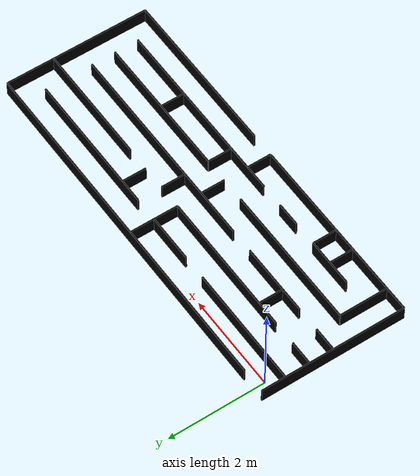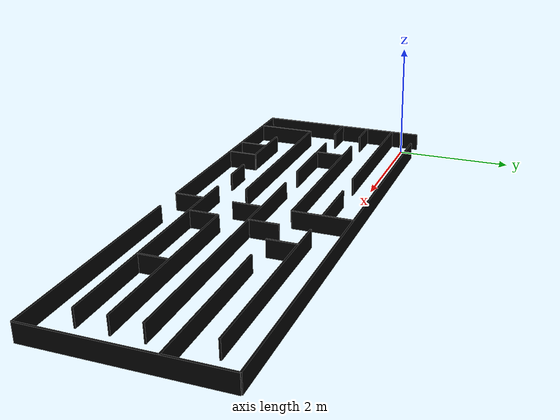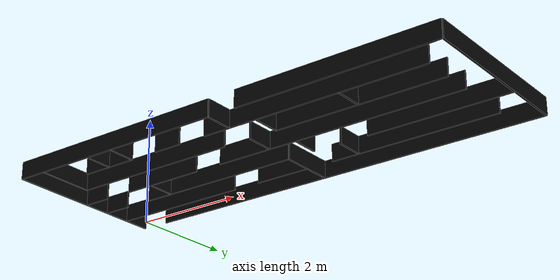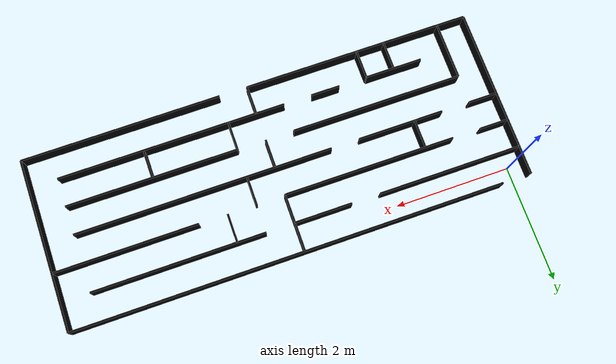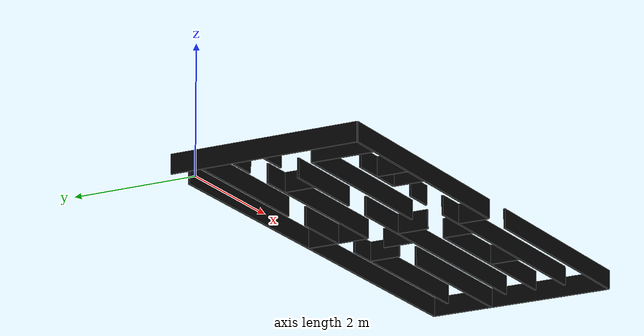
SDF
<?xml version="1.0"?>
<sdf version="1.9">
  <model name="school_maze" canonical_link="maze_link">
    <static>true</static>

    <link name="maze_link">

      <pose relative_to="__model__">
        3.75 -1.25 0.0 0.0 0.0 0.0
      </pose>

      <collision name="h_0_1_15_collision">
        <pose>0.250 1.500 0.150 0 0 0</pose>
        <geometry>
          <box>
            <size>7.500 0.030 0.300</size>
          </box>
        </geometry>
        <surface>
          <friction>
            <ode>
              <mu>0.8</mu>
              <mu2>0.8</mu2>
            </ode>
          </friction>
        </surface>
      </collision>

      <visual name="h_0_1_15_visual">
        <pose>0.250 1.500 0.150 0 0 0</pose>
        <geometry>
          <box>
            <size>7.500 0.030 0.300</size>
          </box>
        </geometry>
        <cast_shadows>true</cast_shadows>
        <material>
          <ambient>0.010 0.010 0.010 1.0</ambient>
          <diffuse>0.015 0.015 0.015 1.0</diffuse>
          <specular>0.080 0.080 0.080 1.0</specular>
        </material>
      </visual>
      <collision name="h_1_0_4_collision">
        <pose>-2.750 1.000 0.150 0 0 0</pose>
        <geometry>
          <box>
            <size>2.500 0.030 0.300</size>
          </box>
        </geometry>
        <surface>
          <friction>
            <ode>
              <mu>0.8</mu>
              <mu2>0.8</mu2>
            </ode>
          </friction>
        </surface>
      </collision>

      <visual name="h_1_0_4_visual">
        <pose>-2.750 1.000 0.150 0 0 0</pose>
        <geometry>
          <box>
            <size>2.500 0.030 0.300</size>
          </box>
        </geometry>
        <cast_shadows>true</cast_shadows>
        <material>
          <ambient>0.010 0.010 0.010 1.0</ambient>
          <diffuse>0.015 0.015 0.015 1.0</diffuse>
          <specular>0.080 0.080 0.080 1.0</specular>
        </material>
      </visual>
      <collision name="h_1_6_7_collision">
        <pose>-0.500 1.000 0.150 0 0 0</pose>
        <geometry>
          <box>
            <size>1.000 0.030 0.300</size>
          </box>
        </geometry>
        <surface>
          <friction>
            <ode>
              <mu>0.8</mu>
              <mu2>0.8</mu2>
            </ode>
          </friction>
        </surface>
      </collision>

      <visual name="h_1_6_7_visual">
        <pose>-0.500 1.000 0.150 0 0 0</pose>
        <geometry>
          <box>
            <size>1.000 0.030 0.300</size>
          </box>
        </geometry>
        <cast_shadows>true</cast_shadows>
        <material>
          <ambient>0.010 0.010 0.010 1.0</ambient>
          <diffuse>0.015 0.015 0.015 1.0</diffuse>
          <specular>0.080 0.080 0.080 1.0</specular>
        </material>
      </visual>
      <collision name="h_1_9_14_collision">
        <pose>2.000 1.000 0.150 0 0 0</pose>
        <geometry>
          <box>
            <size>3.000 0.030 0.300</size>
          </box>
        </geometry>
        <surface>
          <friction>
            <ode>
              <mu>0.8</mu>
              <mu2>0.8</mu2>
            </ode>
          </friction>
        </surface>
      </collision>

      <visual name="h_1_9_14_visual">
        <pose>2.000 1.000 0.150 0 0 0</pose>
        <geometry>
          <box>
            <size>3.000 0.030 0.300</size>
          </box>
        </geometry>
        <cast_shadows>true</cast_shadows>
        <material>
          <ambient>0.010 0.010 0.010 1.0</ambient>
          <diffuse>0.015 0.015 0.015 1.0</diffuse>
          <specular>0.080 0.080 0.080 1.0</specular>
        </material>
      </visual>
      <collision name="h_2_0_0_collision">
        <pose>-3.750 0.500 0.150 0 0 0</pose>
        <geometry>
          <box>
            <size>0.500 0.030 0.300</size>
          </box>
        </geometry>
        <surface>
          <friction>
            <ode>
              <mu>0.8</mu>
              <mu2>0.8</mu2>
            </ode>
          </friction>
        </surface>
      </collision>

      <visual name="h_2_0_0_visual">
        <pose>-3.750 0.500 0.150 0 0 0</pose>
        <geometry>
          <box>
            <size>0.500 0.030 0.300</size>
          </box>
        </geometry>
        <cast_shadows>true</cast_shadows>
        <material>
          <ambient>0.010 0.010 0.010 1.0</ambient>
          <diffuse>0.015 0.015 0.015 1.0</diffuse>
          <specular>0.080 0.080 0.080 1.0</specular>
        </material>
      </visual>
      <collision name="h_2_2_7_collision">
        <pose>-1.500 0.500 0.150 0 0 0</pose>
        <geometry>
          <box>
            <size>3.000 0.030 0.300</size>
          </box>
        </geometry>
        <surface>
          <friction>
            <ode>
              <mu>0.8</mu>
              <mu2>0.8</mu2>
            </ode>
          </friction>
        </surface>
      </collision>

      <visual name="h_2_2_7_visual">
        <pose>-1.500 0.500 0.150 0 0 0</pose>
        <geometry>
          <box>
            <size>3.000 0.030 0.300</size>
          </box>
        </geometry>
        <cast_shadows>true</cast_shadows>
        <material>
          <ambient>0.010 0.010 0.010 1.0</ambient>
          <diffuse>0.015 0.015 0.015 1.0</diffuse>
          <specular>0.080 0.080 0.080 1.0</specular>
        </material>
      </visual>
      <collision name="h_2_11_15_collision">
        <pose>2.750 0.500 0.150 0 0 0</pose>
        <geometry>
          <box>
            <size>2.500 0.030 0.300</size>
          </box>
        </geometry>
        <surface>
          <friction>
            <ode>
              <mu>0.8</mu>
              <mu2>0.8</mu2>
            </ode>
          </friction>
        </surface>
      </collision>

      <visual name="h_2_11_15_visual">
        <pose>2.750 0.500 0.150 0 0 0</pose>
        <geometry>
          <box>
            <size>2.500 0.030 0.300</size>
          </box>
        </geometry>
        <cast_shadows>true</cast_shadows>
        <material>
          <ambient>0.010 0.010 0.010 1.0</ambient>
          <diffuse>0.015 0.015 0.015 1.0</diffuse>
          <specular>0.080 0.080 0.080 1.0</specular>
        </material>
      </visual>
      <collision name="h_3_0_0_collision">
        <pose>-3.750 0.000 0.150 0 0 0</pose>
        <geometry>
          <box>
            <size>0.500 0.030 0.300</size>
          </box>
        </geometry>
        <surface>
          <friction>
            <ode>
              <mu>0.8</mu>
              <mu2>0.8</mu2>
            </ode>
          </friction>
        </surface>
      </collision>

      <visual name="h_3_0_0_visual">
        <pose>-3.750 0.000 0.150 0 0 0</pose>
        <geometry>
          <box>
            <size>0.500 0.030 0.300</size>
          </box>
        </geometry>
        <cast_shadows>true</cast_shadows>
        <material>
          <ambient>0.010 0.010 0.010 1.0</ambient>
          <diffuse>0.015 0.015 0.015 1.0</diffuse>
          <specular>0.080 0.080 0.080 1.0</specular>
        </material>
      </visual>
      <collision name="h_3_2_4_collision">
        <pose>-2.250 0.000 0.150 0 0 0</pose>
        <geometry>
          <box>
            <size>1.500 0.030 0.300</size>
          </box>
        </geometry>
        <surface>
          <friction>
            <ode>
              <mu>0.8</mu>
              <mu2>0.8</mu2>
            </ode>
          </friction>
        </surface>
      </collision>

      <visual name="h_3_2_4_visual">
        <pose>-2.250 0.000 0.150 0 0 0</pose>
        <geometry>
          <box>
            <size>1.500 0.030 0.300</size>
          </box>
        </geometry>
        <cast_shadows>true</cast_shadows>
        <material>
          <ambient>0.010 0.010 0.010 1.0</ambient>
          <diffuse>0.015 0.015 0.015 1.0</diffuse>
          <specular>0.080 0.080 0.080 1.0</specular>
        </material>
      </visual>
      <collision name="h_3_6_14_collision">
        <pose>1.250 0.000 0.150 0 0 0</pose>
        <geometry>
          <box>
            <size>4.500 0.030 0.300</size>
          </box>
        </geometry>
        <surface>
          <friction>
            <ode>
              <mu>0.8</mu>
              <mu2>0.8</mu2>
            </ode>
          </friction>
        </surface>
      </collision>

      <visual name="h_3_6_14_visual">
        <pose>1.250 0.000 0.150 0 0 0</pose>
        <geometry>
          <box>
            <size>4.500 0.030 0.300</size>
          </box>
        </geometry>
        <cast_shadows>true</cast_shadows>
        <material>
          <ambient>0.010 0.010 0.010 1.0</ambient>
          <diffuse>0.015 0.015 0.015 1.0</diffuse>
          <specular>0.080 0.080 0.080 1.0</specular>
        </material>
      </visual>
      <collision name="h_4_1_6_collision">
        <pose>-2.000 -0.500 0.150 0 0 0</pose>
        <geometry>
          <box>
            <size>3.000 0.030 0.300</size>
          </box>
        </geometry>
        <surface>
          <friction>
            <ode>
              <mu>0.8</mu>
              <mu2>0.8</mu2>
            </ode>
          </friction>
        </surface>
      </collision>

      <visual name="h_4_1_6_visual">
        <pose>-2.000 -0.500 0.150 0 0 0</pose>
        <geometry>
          <box>
            <size>3.000 0.030 0.300</size>
          </box>
        </geometry>
        <cast_shadows>true</cast_shadows>
        <material>
          <ambient>0.010 0.010 0.010 1.0</ambient>
          <diffuse>0.015 0.015 0.015 1.0</diffuse>
          <specular>0.080 0.080 0.080 1.0</specular>
        </material>
      </visual>
      <collision name="h_4_9_14_collision">
        <pose>2.000 -0.500 0.150 0 0 0</pose>
        <geometry>
          <box>
            <size>3.000 0.030 0.300</size>
          </box>
        </geometry>
        <surface>
          <friction>
            <ode>
              <mu>0.8</mu>
              <mu2>0.8</mu2>
            </ode>
          </friction>
        </surface>
      </collision>

      <visual name="h_4_9_14_visual">
        <pose>2.000 -0.500 0.150 0 0 0</pose>
        <geometry>
          <box>
            <size>3.000 0.030 0.300</size>
          </box>
        </geometry>
        <cast_shadows>true</cast_shadows>
        <material>
          <ambient>0.010 0.010 0.010 1.0</ambient>
          <diffuse>0.015 0.015 0.015 1.0</diffuse>
          <specular>0.080 0.080 0.080 1.0</specular>
        </material>
      </visual>
      <collision name="h_5_2_3_collision">
        <pose>-2.500 -1.000 0.150 0 0 0</pose>
        <geometry>
          <box>
            <size>1.000 0.030 0.300</size>
          </box>
        </geometry>
        <surface>
          <friction>
            <ode>
              <mu>0.8</mu>
              <mu2>0.8</mu2>
            </ode>
          </friction>
        </surface>
      </collision>

      <visual name="h_5_2_3_visual">
        <pose>-2.500 -1.000 0.150 0 0 0</pose>
        <geometry>
          <box>
            <size>1.000 0.030 0.300</size>
          </box>
        </geometry>
        <cast_shadows>true</cast_shadows>
        <material>
          <ambient>0.010 0.010 0.010 1.0</ambient>
          <diffuse>0.015 0.015 0.015 1.0</diffuse>
          <specular>0.080 0.080 0.080 1.0</specular>
        </material>
      </visual>
      <collision name="h_5_5_5_collision">
        <pose>-1.250 -1.000 0.150 0 0 0</pose>
        <geometry>
          <box>
            <size>0.500 0.030 0.300</size>
          </box>
        </geometry>
        <surface>
          <friction>
            <ode>
              <mu>0.8</mu>
              <mu2>0.8</mu2>
            </ode>
          </friction>
        </surface>
      </collision>

      <visual name="h_5_5_5_visual">
        <pose>-1.250 -1.000 0.150 0 0 0</pose>
        <geometry>
          <box>
            <size>0.500 0.030 0.300</size>
          </box>
        </geometry>
        <cast_shadows>true</cast_shadows>
        <material>
          <ambient>0.010 0.010 0.010 1.0</ambient>
          <diffuse>0.015 0.015 0.015 1.0</diffuse>
          <specular>0.080 0.080 0.080 1.0</specular>
        </material>
      </visual>
      <collision name="h_5_7_14_collision">
        <pose>1.500 -1.000 0.150 0 0 0</pose>
        <geometry>
          <box>
            <size>4.000 0.030 0.300</size>
          </box>
        </geometry>
        <surface>
          <friction>
            <ode>
              <mu>0.8</mu>
              <mu2>0.8</mu2>
            </ode>
          </friction>
        </surface>
      </collision>

      <visual name="h_5_7_14_visual">
        <pose>1.500 -1.000 0.150 0 0 0</pose>
        <geometry>
          <box>
            <size>4.000 0.030 0.300</size>
          </box>
        </geometry>
        <cast_shadows>true</cast_shadows>
        <material>
          <ambient>0.010 0.010 0.010 1.0</ambient>
          <diffuse>0.015 0.015 0.015 1.0</diffuse>
          <specular>0.080 0.080 0.080 1.0</specular>
        </material>
      </visual>
      <collision name="h_6_0_7_collision">
        <pose>-2.000 -1.500 0.150 0 0 0</pose>
        <geometry>
          <box>
            <size>4.000 0.030 0.300</size>
          </box>
        </geometry>
        <surface>
          <friction>
            <ode>
              <mu>0.8</mu>
              <mu2>0.8</mu2>
            </ode>
          </friction>
        </surface>
      </collision>

      <visual name="h_6_0_7_visual">
        <pose>-2.000 -1.500 0.150 0 0 0</pose>
        <geometry>
          <box>
            <size>4.000 0.030 0.300</size>
          </box>
        </geometry>
        <cast_shadows>true</cast_shadows>
        <material>
          <ambient>0.010 0.010 0.010 1.0</ambient>
          <diffuse>0.015 0.015 0.015 1.0</diffuse>
          <specular>0.080 0.080 0.080 1.0</specular>
        </material>
      </visual>
      <collision name="h_6_9_15_collision">
        <pose>2.250 -1.500 0.150 0 0 0</pose>
        <geometry>
          <box>
            <size>3.500 0.030 0.300</size>
          </box>
        </geometry>
        <surface>
          <friction>
            <ode>
              <mu>0.8</mu>
              <mu2>0.8</mu2>
            </ode>
          </friction>
        </surface>
      </collision>

      <visual name="h_6_9_15_visual">
        <pose>2.250 -1.500 0.150 0 0 0</pose>
        <geometry>
          <box>
            <size>3.500 0.030 0.300</size>
          </box>
        </geometry>
        <cast_shadows>true</cast_shadows>
        <material>
          <ambient>0.010 0.010 0.010 1.0</ambient>
          <diffuse>0.015 0.015 0.015 1.0</diffuse>
          <specular>0.080 0.080 0.080 1.0</specular>
        </material>
      </visual>
      <collision name="v_0_0_5_collision">
        <pose>-4.000 0.000 0.150 0 0 0</pose>
        <geometry>
          <box>
            <size>0.030 3.000 0.300</size>
          </box>
        </geometry>
        <surface>
          <friction>
            <ode>
              <mu>0.8</mu>
              <mu2>0.8</mu2>
            </ode>
          </friction>
        </surface>
      </collision>

      <visual name="v_0_0_5_visual">
        <pose>-4.000 0.000 0.150 0 0 0</pose>
        <geometry>
          <box>
            <size>0.030 3.000 0.300</size>
          </box>
        </geometry>
        <cast_shadows>true</cast_shadows>
        <material>
          <ambient>0.010 0.010 0.010 1.0</ambient>
          <diffuse>0.015 0.015 0.015 1.0</diffuse>
          <specular>0.080 0.080 0.080 1.0</specular>
        </material>
      </visual>
      <collision name="v_1_4_5_collision">
        <pose>-3.500 -1.000 0.150 0 0 0</pose>
        <geometry>
          <box>
            <size>0.030 1.000 0.300</size>
          </box>
        </geometry>
        <surface>
          <friction>
            <ode>
              <mu>0.8</mu>
              <mu2>0.8</mu2>
            </ode>
          </friction>
        </surface>
      </collision>

      <visual name="v_1_4_5_visual">
        <pose>-3.500 -1.000 0.150 0 0 0</pose>
        <geometry>
          <box>
            <size>0.030 1.000 0.300</size>
          </box>
        </geometry>
        <cast_shadows>true</cast_shadows>
        <material>
          <ambient>0.010 0.010 0.010 1.0</ambient>
          <diffuse>0.015 0.015 0.015 1.0</diffuse>
          <specular>0.080 0.080 0.080 1.0</specular>
        </material>
      </visual>
      <collision name="v_3_2_2_collision">
        <pose>-2.500 0.250 0.150 0 0 0</pose>
        <geometry>
          <box>
            <size>0.030 0.500 0.300</size>
          </box>
        </geometry>
        <surface>
          <friction>
            <ode>
              <mu>0.8</mu>
              <mu2>0.8</mu2>
            </ode>
          </friction>
        </surface>
      </collision>

      <visual name="v_3_2_2_visual">
        <pose>-2.500 0.250 0.150 0 0 0</pose>
        <geometry>
          <box>
            <size>0.030 0.500 0.300</size>
          </box>
        </geometry>
        <cast_shadows>true</cast_shadows>
        <material>
          <ambient>0.010 0.010 0.010 1.0</ambient>
          <diffuse>0.015 0.015 0.015 1.0</diffuse>
          <specular>0.080 0.080 0.080 1.0</specular>
        </material>
      </visual>
      <collision name="v_3_5_5_collision">
        <pose>-2.500 -1.250 0.150 0 0 0</pose>
        <geometry>
          <box>
            <size>0.030 0.500 0.300</size>
          </box>
        </geometry>
        <surface>
          <friction>
            <ode>
              <mu>0.8</mu>
              <mu2>0.8</mu2>
            </ode>
          </friction>
        </surface>
      </collision>

      <visual name="v_3_5_5_visual">
        <pose>-2.500 -1.250 0.150 0 0 0</pose>
        <geometry>
          <box>
            <size>0.030 0.500 0.300</size>
          </box>
        </geometry>
        <cast_shadows>true</cast_shadows>
        <material>
          <ambient>0.010 0.010 0.010 1.0</ambient>
          <diffuse>0.015 0.015 0.015 1.0</diffuse>
          <specular>0.080 0.080 0.080 1.0</specular>
        </material>
      </visual>
      <collision name="v_4_5_5_collision">
        <pose>-2.000 -1.250 0.150 0 0 0</pose>
        <geometry>
          <box>
            <size>0.030 0.500 0.300</size>
          </box>
        </geometry>
        <surface>
          <friction>
            <ode>
              <mu>0.8</mu>
              <mu2>0.8</mu2>
            </ode>
          </friction>
        </surface>
      </collision>

      <visual name="v_4_5_5_visual">
        <pose>-2.000 -1.250 0.150 0 0 0</pose>
        <geometry>
          <box>
            <size>0.030 0.500 0.300</size>
          </box>
        </geometry>
        <cast_shadows>true</cast_shadows>
        <material>
          <ambient>0.010 0.010 0.010 1.0</ambient>
          <diffuse>0.015 0.015 0.015 1.0</diffuse>
          <specular>0.080 0.080 0.080 1.0</specular>
        </material>
      </visual>
      <collision name="v_8_0_1_collision">
        <pose>0.000 1.000 0.150 0 0 0</pose>
        <geometry>
          <box>
            <size>0.030 1.000 0.300</size>
          </box>
        </geometry>
        <surface>
          <friction>
            <ode>
              <mu>0.8</mu>
              <mu2>0.8</mu2>
            </ode>
          </friction>
        </surface>
      </collision>

      <visual name="v_8_0_1_visual">
        <pose>0.000 1.000 0.150 0 0 0</pose>
        <geometry>
          <box>
            <size>0.030 1.000 0.300</size>
          </box>
        </geometry>
        <cast_shadows>true</cast_shadows>
        <material>
          <ambient>0.010 0.010 0.010 1.0</ambient>
          <diffuse>0.015 0.015 0.015 1.0</diffuse>
          <specular>0.080 0.080 0.080 1.0</specular>
        </material>
      </visual>
      <collision name="v_8_3_3_collision">
        <pose>0.000 -0.250 0.150 0 0 0</pose>
        <geometry>
          <box>
            <size>0.030 0.500 0.300</size>
          </box>
        </geometry>
        <surface>
          <friction>
            <ode>
              <mu>0.8</mu>
              <mu2>0.8</mu2>
            </ode>
          </friction>
        </surface>
      </collision>

      <visual name="v_8_3_3_visual">
        <pose>0.000 -0.250 0.150 0 0 0</pose>
        <geometry>
          <box>
            <size>0.030 0.500 0.300</size>
          </box>
        </geometry>
        <cast_shadows>true</cast_shadows>
        <material>
          <ambient>0.010 0.010 0.010 1.0</ambient>
          <diffuse>0.015 0.015 0.015 1.0</diffuse>
          <specular>0.080 0.080 0.080 1.0</specular>
        </material>
      </visual>
      <collision name="v_8_5_5_collision">
        <pose>0.000 -1.250 0.150 0 0 0</pose>
        <geometry>
          <box>
            <size>0.030 0.500 0.300</size>
          </box>
        </geometry>
        <surface>
          <friction>
            <ode>
              <mu>0.8</mu>
              <mu2>0.8</mu2>
            </ode>
          </friction>
        </surface>
      </collision>

      <visual name="v_8_5_5_visual">
        <pose>0.000 -1.250 0.150 0 0 0</pose>
        <geometry>
          <box>
            <size>0.030 0.500 0.300</size>
          </box>
        </geometry>
        <cast_shadows>true</cast_shadows>
        <material>
          <ambient>0.010 0.010 0.010 1.0</ambient>
          <diffuse>0.015 0.015 0.015 1.0</diffuse>
          <specular>0.080 0.080 0.080 1.0</specular>
        </material>
      </visual>
      <collision name="v_9_2_2_collision">
        <pose>0.500 0.250 0.150 0 0 0</pose>
        <geometry>
          <box>
            <size>0.030 0.500 0.300</size>
          </box>
        </geometry>
        <surface>
          <friction>
            <ode>
              <mu>0.8</mu>
              <mu2>0.8</mu2>
            </ode>
          </friction>
        </surface>
      </collision>

      <visual name="v_9_2_2_visual">
        <pose>0.500 0.250 0.150 0 0 0</pose>
        <geometry>
          <box>
            <size>0.030 0.500 0.300</size>
          </box>
        </geometry>
        <cast_shadows>true</cast_shadows>
        <material>
          <ambient>0.010 0.010 0.010 1.0</ambient>
          <diffuse>0.015 0.015 0.015 1.0</diffuse>
          <specular>0.080 0.080 0.080 1.0</specular>
        </material>
      </visual>
      <collision name="v_9_4_4_collision">
        <pose>0.500 -0.750 0.150 0 0 0</pose>
        <geometry>
          <box>
            <size>0.030 0.500 0.300</size>
          </box>
        </geometry>
        <surface>
          <friction>
            <ode>
              <mu>0.8</mu>
              <mu2>0.8</mu2>
            </ode>
          </friction>
        </surface>
      </collision>

      <visual name="v_9_4_4_visual">
        <pose>0.500 -0.750 0.150 0 0 0</pose>
        <geometry>
          <box>
            <size>0.030 0.500 0.300</size>
          </box>
        </geometry>
        <cast_shadows>true</cast_shadows>
        <material>
          <ambient>0.010 0.010 0.010 1.0</ambient>
          <diffuse>0.015 0.015 0.015 1.0</diffuse>
          <specular>0.080 0.080 0.080 1.0</specular>
        </material>
      </visual>
      <collision name="v_10_1_1_collision">
        <pose>1.000 0.750 0.150 0 0 0</pose>
        <geometry>
          <box>
            <size>0.030 0.500 0.300</size>
          </box>
        </geometry>
        <surface>
          <friction>
            <ode>
              <mu>0.8</mu>
              <mu2>0.8</mu2>
            </ode>
          </friction>
        </surface>
      </collision>

      <visual name="v_10_1_1_visual">
        <pose>1.000 0.750 0.150 0 0 0</pose>
        <geometry>
          <box>
            <size>0.030 0.500 0.300</size>
          </box>
        </geometry>
        <cast_shadows>true</cast_shadows>
        <material>
          <ambient>0.010 0.010 0.010 1.0</ambient>
          <diffuse>0.015 0.015 0.015 1.0</diffuse>
          <specular>0.080 0.080 0.080 1.0</specular>
        </material>
      </visual>
      <collision name="v_12_4_4_collision">
        <pose>2.000 -0.750 0.150 0 0 0</pose>
        <geometry>
          <box>
            <size>0.030 0.500 0.300</size>
          </box>
        </geometry>
        <surface>
          <friction>
            <ode>
              <mu>0.8</mu>
              <mu2>0.8</mu2>
            </ode>
          </friction>
        </surface>
      </collision>

      <visual name="v_12_4_4_visual">
        <pose>2.000 -0.750 0.150 0 0 0</pose>
        <geometry>
          <box>
            <size>0.030 0.500 0.300</size>
          </box>
        </geometry>
        <cast_shadows>true</cast_shadows>
        <material>
          <ambient>0.010 0.010 0.010 1.0</ambient>
          <diffuse>0.015 0.015 0.015 1.0</diffuse>
          <specular>0.080 0.080 0.080 1.0</specular>
        </material>
      </visual>
      <collision name="v_16_0_5_collision">
        <pose>4.000 0.000 0.150 0 0 0</pose>
        <geometry>
          <box>
            <size>0.030 3.000 0.300</size>
          </box>
        </geometry>
        <surface>
          <friction>
            <ode>
              <mu>0.8</mu>
              <mu2>0.8</mu2>
            </ode>
          </friction>
        </surface>
      </collision>

      <visual name="v_16_0_5_visual">
        <pose>4.000 0.000 0.150 0 0 0</pose>
        <geometry>
          <box>
            <size>0.030 3.000 0.300</size>
          </box>
        </geometry>
        <cast_shadows>true</cast_shadows>
        <material>
          <ambient>0.010 0.010 0.010 1.0</ambient>
          <diffuse>0.015 0.015 0.015 1.0</diffuse>
          <specular>0.080 0.080 0.080 1.0</specular>
        </material>
      </visual>

    </link>
  </model>
</sdf>
